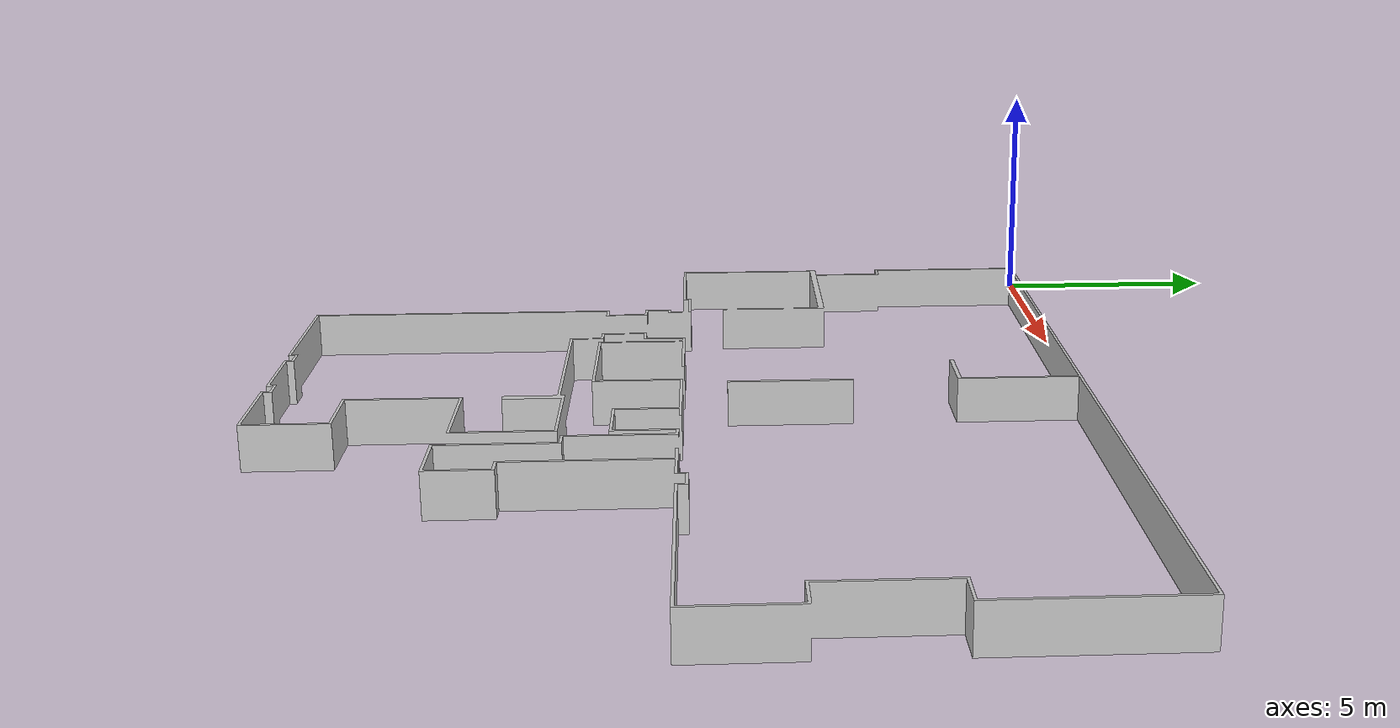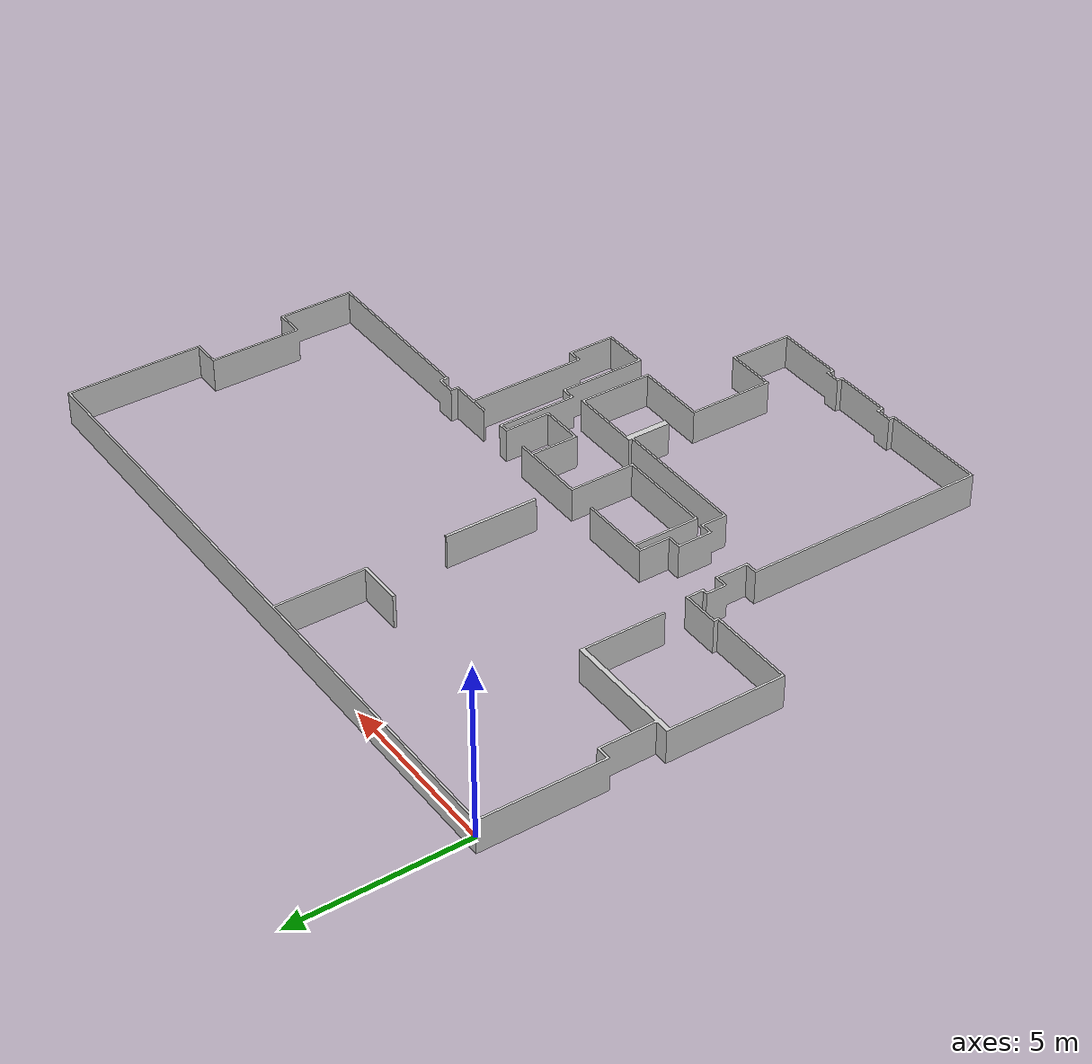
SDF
<?xml version="1.0" ?>
<sdf version="1.8">
  <model name="labfabex_walls">
    <static>true</static>
    <link name="link">
      <visual name="visual">
        <geometry>
          <mesh>
            <uri>meshes/labfabex_walls.dae</uri>
          </mesh>
        </geometry>
      </visual>
      <collision name="collision">
        <geometry>
          <mesh>
            <uri>meshes/labfabex_walls.dae</uri>
          </mesh>
        </geometry>
      </collision>
    </link>
  </model>
</sdf>
